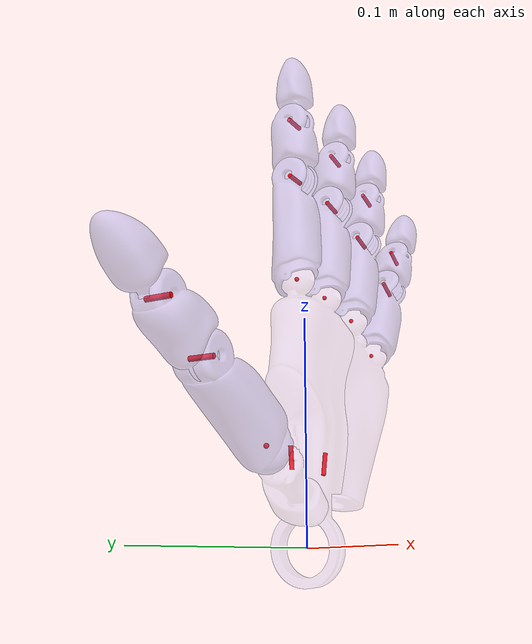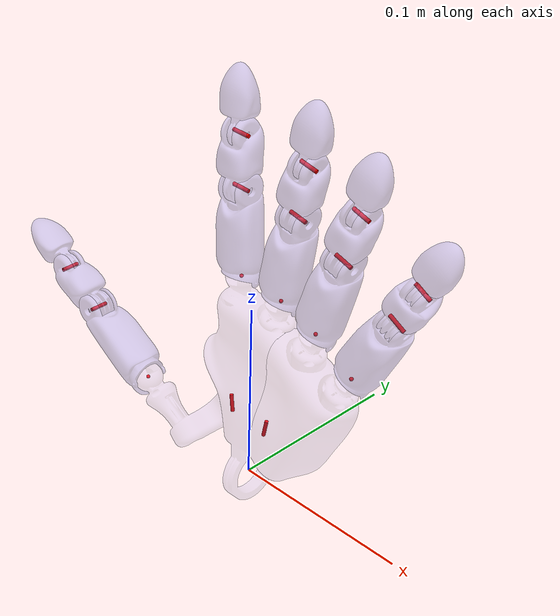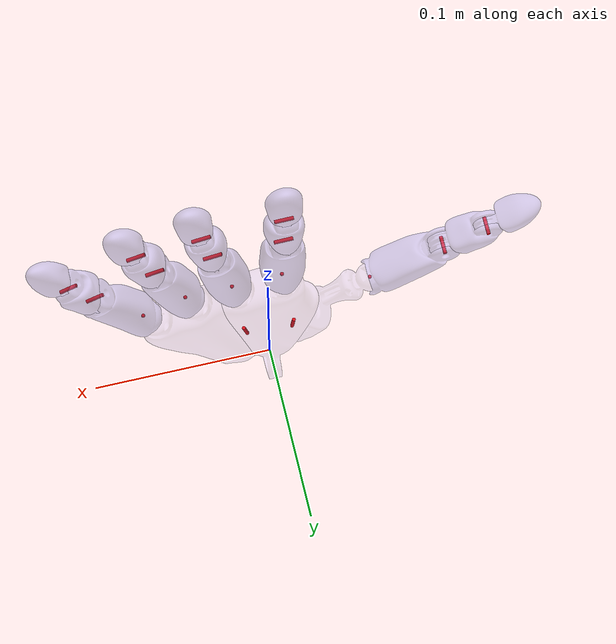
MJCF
<mujoco model="uoa_hand">
    <compiler angle="degree" coordinate="local"/>
    <option timestep="0.01" gravity="0 0 -9.81"/>

    <include file="defaults.xml"/>
    <include file="assets.xml"/>

    <worldbody>
	<body name="palm_1" pos="0 0 0">
	    <geom type="mesh" mesh="palm_1" rgba="0.6 0.6 0.9 0.2"/>

	    <include file="fingers/index.xml"/>
	    <include file="fingers/middle.xml"/>

	    <body name="palm_2" pos="0 0 0">
		<geom type="mesh" mesh="palm_2" rgba="0.6 0.6 0.9 0.2"/>
		<joint name="palm_1/palm_2" type="hinge" axis="-0.101 0 0.995" pos="-0.013426 -0.00 0.036848" limited="true" range="0 60"/>
		<site name="palm_1/palm_2" pos="-0.013426 -0.00 0.036848" rgba="1 0 0 1" type="cylinder" euler="0 -5.807 0"/>
		<include file="fingers/thumb.xml"/>
	    </body>

	    <body name="palm_3" pos="0 0 0">
		<joint name="palm_1/palm_3" type="hinge" axis="0.2026 0 0.9793" pos="0.01298 -0.002 0.03567" limited="true" range="-40 0"/>
		<site name="palm_1/palm_3" pos="0.01298 -0.002 0.03567" rgba="1 0 0 1" type="cylinder" euler="0 11.687 0"/>
		<geom type="mesh" mesh="palm_3" rgba="0.6 0.6 0.9 0.2"/>

		<include file="fingers/ring.xml"/>
		<include file="fingers/pinky.xml"/>
	    </body>

	</body>

    </worldbody>

    <include file="actuator.xml"/>
</mujoco>

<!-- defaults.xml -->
<mujoco>
    <default>
	<geom type="mesh" rgba="0.6 0.6 0.9 0.4"/>
	<joint type="hinge" limited="true" damping="0.05"/>
	<site size="0.001" rgba="1 0 0 1"/>
	<position ctrllimited="true" forcelimited="true" ctrlrange="0 0" forcerange="-0.4 0.4" kp="1" kv="0.001"/>
    </default>

</mujoco>

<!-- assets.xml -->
<mujoco>
    <default>
	<mesh scale="0.001 0.001 0.001"/>
    </default>

    <asset>
	<mesh name="palm_1" file="../stls/palm_1.stl"/>
	<mesh name="palm_2" file="../stls/palm_2.stl"/>
	<mesh name="palm_3" file="../stls/palm_3.stl"/>

	<mesh name="thumb_1" file="../stls/thumb_1.stl"/>
	<mesh name="thumb_2" file="../stls/thumb_2.stl"/>
	<mesh name="thumb_3" file="../stls/thumb_3.stl"/>

	<mesh name="index_1" file="../stls/index_1.stl"/>
	<mesh name="index_2" file="../stls/index_2.stl"/>
	<mesh name="index_3" file="../stls/index_3.stl"/>

	<mesh name="middle_1" file="../stls/middle_1.stl"/>
	<mesh name="middle_2" file="../stls/middle_2.stl"/>
	<mesh name="middle_3" file="../stls/middle_3.stl"/>

	<mesh name="ring_1" file="../stls/ring_1.stl"/>
	<mesh name="ring_2" file="../stls/ring_2.stl"/>
	<mesh name="ring_3" file="../stls/ring_3.stl"/>

	<mesh name="pinky_1" file="../stls/pinky_1.stl"/>
	<mesh name="pinky_2" file="../stls/pinky_2.stl"/>
	<mesh name="pinky_3" file="../stls/pinky_3.stl"/>
    </asset>
</mujoco>

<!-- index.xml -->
<mujoco>
    <body name="index_1" pos="0 0 0">
	<geom type="mesh" mesh="index_1"/>

	<!--ball joint-->
	<joint name="palm_1/index_1_1" type="hinge" pos="-0.007455 0.0 0.1165" axis="0 1 0" range="-20 20"/>
	<joint name="palm_1/index_1_2" type="hinge" pos="-0.007455 0.0 0.1165" axis="0.9997 0 -0.0261" range="-10 80"/>
	<site name="palm_1/index_1" pos="-0.007455 0.0 0.1165" rgba="1 0 0 1" type="sphere" euler="0 91.497 0"/>

	<body name="index_2" pos="0 0 0">
	    <geom type="mesh" mesh="index_2"/>
	    <joint name="index_1/index_2" type="hinge" pos="-0.008409 0.0 0.164492" axis="0.9997 0 -0.0261" range="0 90"/>
	    <site name="index_1/index_2" pos="-0.008409 0.0 0.164492" rgba="1 0 0 1" type="cylinder" euler="0 91.497 0"/>

	    <body name="index_3" pos="0 0 0">
		<geom type="mesh" mesh="index_3"/>
		<joint name="index_2/index_3" type="hinge" pos="-0.008741 0.0 0.192493" axis="0.9997 0 -0.0261" range="0 85"/>
		<site name="index_2/index_3" pos="-0.008741 0.0 0.192493" rgba="1 0 0 1" type="cylinder" euler="0 91.497 0"/>
	    </body>
	</body>

    </body>
</mujoco>

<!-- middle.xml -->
<mujoco>
    <body name="middle_1" pos="0 0 0">
	<geom type="mesh" mesh="middle_1"/>

	<!--ball joint-->
	<joint name="palm_1/middle_1_1" type="hinge" pos="0.019711 0.0 0.114262" axis="0 1 0" range="-20 20"/>
	<joint name="palm_1/middle_1_2" type="hinge" pos="0.019711 0.0 0.114262" axis="0.9836 0 -0.1825" range="-10 80"/>
	<site name="palm_1/middle_1" pos="0.019711 0.0 0.114262" rgba="1 0 0 1" type="sphere" euler="0 101.503 0"/>

	<body name="middle_2" pos="0 0 0">
	    <geom type="mesh" mesh="middle_2"/>
	    <joint name="middle_1/middle_2" type="hinge" pos="0.028923 0.0 0.163406" axis="0.9836 0 -0.1825" range="0 90"/>
	    <site name="middle_1/middle_2" pos="0.028923 0.0 0.163406" rgba="1 0 0 1" type="cylinder" euler="0 101.503 0"/>

	    <body name="middle_3" pos="0 0 0">
		<geom type="mesh" mesh="middle_3"/>
		<joint name="middle_2/middle_3" type="hinge" pos="0.034223 0.0 0.1909" axis="0.9836 0 -0.1825" range="0 85"/>
		<site name="middle_2/middle_3" pos="0.034223 0.0 0.1909" rgba="1 0 0 1" type="cylinder" euler="0 101.503 0"/>
	    </body>
	</body>

    </body>
</mujoco>

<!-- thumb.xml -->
<mujoco>
    <body name="thumb_1" pos="0 0 0">
	<geom type="mesh" mesh="thumb_1"/>

	<!--ball joint-->
	<joint name="palm_2/thumb_1_1" type="hinge" axis="0.202 0 0.979" pos="-0.061157 -0.0165 0.037024" range="-30 30"/>
	<joint name="palm_2/thumb_1_2" type="hinge" axis="0.202 -0.979 0" pos="-0.061157 -0.0165 0.037024" range="-60 20"/>
	<site name="palm_2/thumb_1" pos="-0.061157 -0.0165 0.037024" rgba="1 0 0 1" type="sphere" euler="-90 0 32.2"/>

	<body name="thumb_2" pos="0 0 0">
	    <geom type="mesh" mesh="thumb_2"/>
	    <joint name="thumb_1/thumb_2" type="hinge" axis="0 1 0" pos="-0.101778 -0.016 0.0626" range="-10 80"/>
	    <site name="thumb_1/thumb_2" pos="-0.101778 -0.016 0.0626" rgba="1 0 0 1" type="cylinder" euler="-90 0 32.2"/>

	    <body name="thumb_3" pos="0 0 0">
		<geom type="mesh" mesh="thumb_3"/>
		<joint name="thumb_2/thumb_3" type="hinge" axis="0 1 0" pos="-0.12547 -0.016 0.077515" range="-10 80"/>
		<site name="thumb_2/thumb_3" pos="-0.12547 -0.016 0.077515" rgba="1 0 0 1" type="cylinder" euler="-90 0 32.2"/>
	    </body>
	</body>

    </body>
</mujoco>

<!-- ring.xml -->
<mujoco>
    <body name="ring_1" pos="0 0 0">
	<geom type="mesh" mesh="ring_1"/>

	<!--ball joint-->
	<joint name="palm_2/ring_1_1" type="hinge" pos="0.044666 -0.002 0.108066" axis="0 1 0" range="-20 20"/>
	<joint name="palm_2/ring_1_2" type="hinge" pos="0.044666 -0.002 0.108066" axis="0.953 0 -0.303" range="-10 80"/>
	<site name="palm_2/ring_1" pos="0.044666 -0.002 0.108066" rgba="1 0 0 1" type="sphere" euler="0 107.599 0"/>

	<body name="ring_2" pos="0 0 0">
	    <geom type="mesh" mesh="ring_2"/>
	    <joint name="ring_1/ring_2" type="hinge" pos="0.059275 -0.002 0.153789" axis="0.953 0 -0.303" range="0 90"/>
	    <site name="ring_1/ring_2" pos="0.059275 -0.002 0.153789" rgba="1 0 0 1" type="cylinder" euler="0 107.599 0"/>

	    <body name="ring_3" pos="0 0 0">
		<geom type="mesh" mesh="ring_3"/>
		<joint name="ring_2/ring_3" type="hinge" pos="0.06793 -0.002 0.180416" axis="0.953 0 -0.303" range="0 85"/>
		<site name="ring_2/ring_3" pos="0.06793 -0.002 0.180416" rgba="1 0 0 1" type="cylinder" euler="0 107.599 0"/>
	    </body>
	</body>

    </body>
</mujoco>

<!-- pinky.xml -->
<mujoco>
    <body name="pinky_1" pos="0 0 0">
	<geom type="mesh" mesh="pinky_1"/>

	<!--ball joint-->
	<joint name="palm_2/pinky_1_1" type="hinge" pos="0.068123 -0.002 0.094455" axis="0 1 0" range="-20 20"/>
	<joint name="palm_2/pinky_1_2" type="hinge" pos="0.068123 -0.002 0.094455" axis="0.868 0 -0.485" range="-10 80"/>
	<site name="palm_2/pinky_1" pos="0.068123 -0.002 0.094455" rgba="1 0 0 1" type="sphere" euler="0 119.599 0"/>

	<body name="pinky_2" pos="0 0 0">
	    <geom type="mesh" mesh="pinky_2"/>
	    <joint name="pinky_1/pinky_2" type="hinge" pos="0.091918 -0.002 0.136141" axis="0.868 0 -0.485" range="0 90"/>
	    <site name="pinky_1/pinky_2" pos="0.091918 -0.002 0.136141" rgba="1 0 0 1" type="cylinder" euler="0 119.599 0"/>

	   <body name="pinky_3" pos="0 0 0">
		<geom type="mesh" mesh="pinky_3"/>
		<joint name="pinky_2/pinky_3" type="hinge" pos="0.10444 -0.002 0.15778" axis="0.868 0 -0.485" range="0 85"/>
		<site name="pinky_2/pinky_3" pos="0.10444 -0.002 0.15778" rgba="1 0 0 1" type="cylinder" euler="0 119.599 0"/>
	   </body>
	</body>

    </body>
</mujoco>

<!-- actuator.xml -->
<mujoco>

    <actuator>
      <position name="act_palm_2" joint="palm_1/palm_2" ctrlrange="0 60" kp="10"/>
      <position name="act_palm_3" joint="palm_1/palm_3" ctrlrange="-40 0"/>

      <position name="act_thumb_1_1" joint="palm_2/thumb_1_1" ctrlrange="-90 0"/>
      <position name="act_thumb_1_2" joint="palm_2/thumb_1_2" ctrlrange="-90 0"/>
      <position name="act_thumb_2" joint="thumb_1/thumb_2" ctrlrange="-90 0"/>
      <position name="act_thumb_3" joint="thumb_2/thumb_3" ctrlrange="-90 0"/>

      <position name="act_index_1_1" joint="palm_1/index_1_1" ctrlrange="-90 0"/>
      <position name="act_index_1_2" joint="palm_1/index_1_2" ctrlrange="-90 0"/>
      <position name="act_index_2" joint="index_1/index_2" ctrlrange="-90 0"/>
      <position name="act_index_3" joint="index_2/index_3" ctrlrange="-90 0"/>

      <position name="act_middle_1_1" joint="palm_1/middle_1_1" ctrlrange="-90 0"/>
      <position name="act_middle_1_2" joint="palm_1/middle_1_2" ctrlrange="-90 0"/>
      <position name="act_middle_2" joint="middle_1/middle_2" ctrlrange="-90 0"/>
      <position name="act_middle_3" joint="middle_2/middle_3" ctrlrange="-90 0"/>

      <position name="act_ring_1_1" joint="palm_2/ring_1_1" ctrlrange="-90 0"/>
      <position name="act_ring_1_2" joint="palm_2/ring_1_2" ctrlrange="-90 0"/>
      <position name="act_ring_2" joint="ring_1/ring_2" ctrlrange="-90 0"/>
      <position name="act_ring_3" joint="ring_2/ring_3" ctrlrange="-90 0"/>

      <position name="act_pinky_1_1" joint="palm_2/pinky_1_1" ctrlrange="-90 0"/>
      <position name="act_pinky_1_2" joint="palm_2/pinky_1_2" ctrlrange="-90 0"/>
      <position name="act_pinky_2" joint="pinky_1/pinky_2" ctrlrange="-90 0"/>
      <position name="act_pinky_3" joint="pinky_2/pinky_3" ctrlrange="-90 0"/>

    </actuator>
</mujoco>

torque = 0.92/0.8 * current *ratio * 0.8
